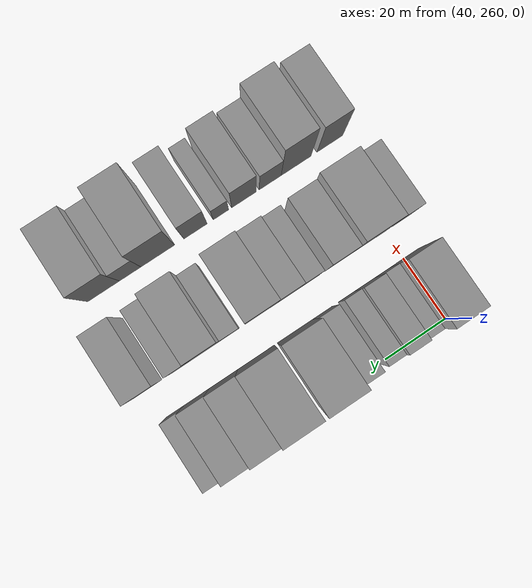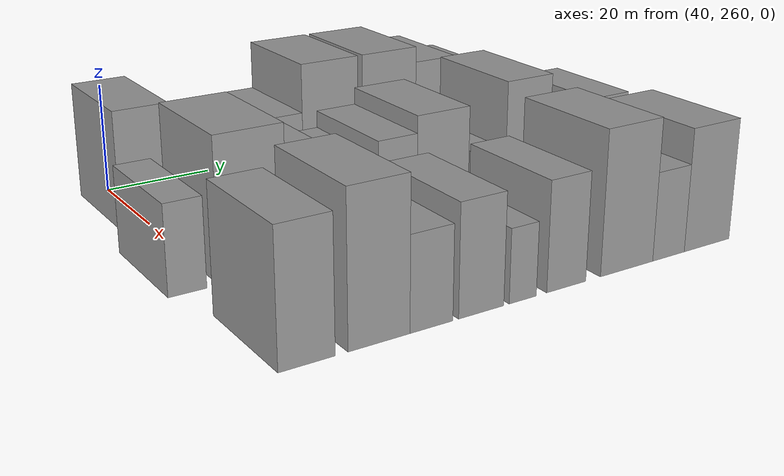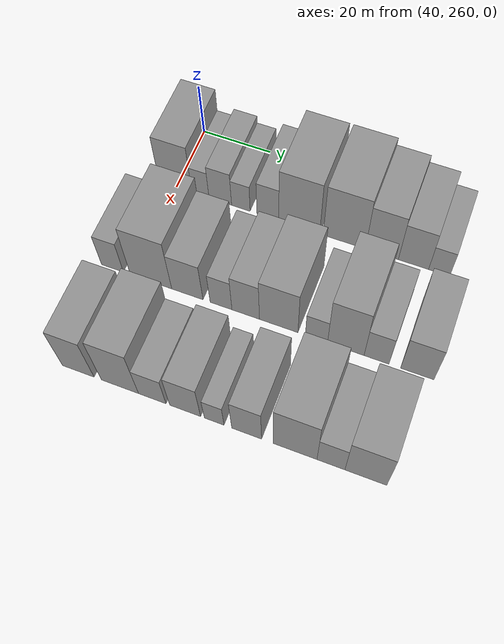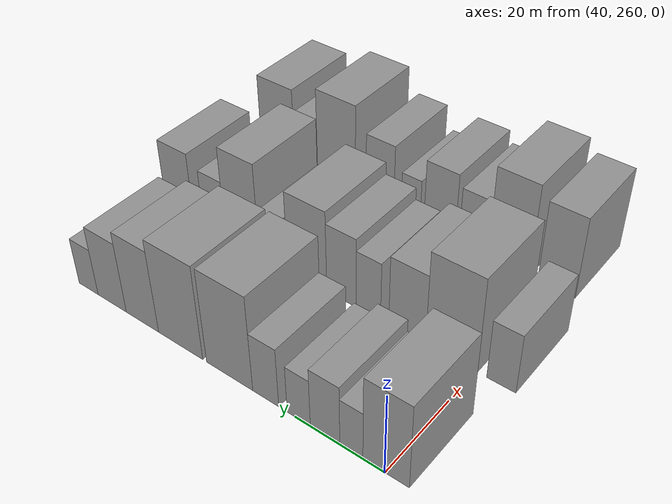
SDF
<sdf version="1.6">
 <world name="default">
  <model name="building_71">
   <static>1</static>
   <pose>50.0000 259.7965 0 0.000000 0.000000 0.000000</pose>
   <link name="link">
    <pose>0 0 10.50 0 0 0</pose>
    <collision name="collision"><geometry><box><size>20.0000 9.8497 21.0000</size></box></geometry></collision>
    <visual name="visual">
     <cast_shadows>0</cast_shadows>
     <geometry><box><size>20.0000 9.8497 21.0000</size></box></geometry>
     <material>
      <script>
       <uri>model://grey_wall/materials/scripts</uri>
       <uri>model://grey_wall/materials/textures</uri>
       <name>vrc/grey_wall</name>
      </script>
     </material>
    </visual>
   </link>
  </model>
  <model name="building_72">
   <static>1</static>
   <pose>50.0000 267.2616 0 0.000000 0.000000 0.000000</pose>
   <link name="link">
    <pose>0 0 6.00 0 0 0</pose>
    <collision name="collision"><geometry><box><size>20.0000 5.0805 12.0000</size></box></geometry></collision>
    <visual name="visual">
     <cast_shadows>0</cast_shadows>
     <geometry><box><size>20.0000 5.0805 12.0000</size></box></geometry>
     <material>
      <script>
       <uri>model://grey_wall/materials/scripts</uri>
       <uri>model://grey_wall/materials/textures</uri>
       <name>vrc/grey_wall</name>
      </script>
     </material>
    </visual>
   </link>
  </model>
  <model name="building_73">
   <static>1</static>
   <pose>50.0000 273.1415 0 0.000000 0.000000 0.000000</pose>
   <link name="link">
    <pose>0 0 7.50 0 0 0</pose>
    <collision name="collision"><geometry><box><size>20.0000 6.6795 15.0000</size></box></geometry></collision>
    <visual name="visual">
     <cast_shadows>0</cast_shadows>
     <geometry><box><size>20.0000 6.6795 15.0000</size></box></geometry>
     <material>
      <script>
       <uri>model://grey_wall/materials/scripts</uri>
       <uri>model://grey_wall/materials/textures</uri>
       <name>vrc/grey_wall</name>
      </script>
     </material>
    </visual>
   </link>
  </model>
  <model name="building_74">
   <static>1</static>
   <pose>50.0000 279.1831 0 0.000000 0.000000 0.000000</pose>
   <link name="link">
    <pose>0 0 6.00 0 0 0</pose>
    <collision name="collision"><geometry><box><size>20.0000 5.4036 12.0000</size></box></geometry></collision>
    <visual name="visual">
     <cast_shadows>0</cast_shadows>
     <geometry><box><size>20.0000 5.4036 12.0000</size></box></geometry>
     <material>
      <script>
       <uri>model://grey_wall/materials/scripts</uri>
       <uri>model://grey_wall/materials/textures</uri>
       <name>vrc/grey_wall</name>
      </script>
     </material>
    </visual>
   </link>
  </model>
  <model name="building_75">
   <static>1</static>
   <pose>50.0000 287.0433 0 0.000000 0.000000 0.000000</pose>
   <link name="link">
    <pose>0 0 7.50 0 0 0</pose>
    <collision name="collision"><geometry><box><size>20.0000 6.3169 15.0000</size></box></geometry></collision>
    <visual name="visual">
     <cast_shadows>0</cast_shadows>
     <geometry><box><size>20.0000 6.3169 15.0000</size></box></geometry>
     <material>
      <script>
       <uri>model://grey_wall/materials/scripts</uri>
       <uri>model://grey_wall/materials/textures</uri>
       <name>vrc/grey_wall</name>
      </script>
     </material>
    </visual>
   </link>
  </model>
  <model name="building_76">
   <static>1</static>
   <pose>50.0000 296.0653 0 0.000000 0.000000 0.000000</pose>
   <link name="link">
    <pose>0 0 12.00 0 0 0</pose>
    <collision name="collision"><geometry><box><size>20.0000 11.7271 24.0000</size></box></geometry></collision>
    <visual name="visual">
     <cast_shadows>0</cast_shadows>
     <geometry><box><size>20.0000 11.7271 24.0000</size></box></geometry>
     <material>
      <script>
       <uri>model://grey_wall/materials/scripts</uri>
       <uri>model://grey_wall/materials/textures</uri>
       <name>vrc/grey_wall</name>
      </script>
     </material>
    </visual>
   </link>
  </model>
  <model name="building_77">
   <static>1</static>
   <pose>50.0000 308.8688 0 0.000000 0.000000 0.000000</pose>
   <link name="link">
    <pose>0 0 12.00 0 0 0</pose>
    <collision name="collision"><geometry><box><size>20.0000 11.8798 24.0000</size></box></geometry></collision>
    <visual name="visual">
     <cast_shadows>0</cast_shadows>
     <geometry><box><size>20.0000 11.8798 24.0000</size></box></geometry>
     <material>
      <script>
       <uri>model://grey_wall/materials/scripts</uri>
       <uri>model://grey_wall/materials/textures</uri>
       <name>vrc/grey_wall</name>
      </script>
     </material>
    </visual>
   </link>
  </model>
  <model name="building_78">
   <static>1</static>
   <pose>50.0000 319.3805 0 0.000000 0.000000 0.000000</pose>
   <link name="link">
    <pose>0 0 10.50 0 0 0</pose>
    <collision name="collision"><geometry><box><size>20.0000 9.1436 21.0000</size></box></geometry></collision>
    <visual name="visual">
     <cast_shadows>0</cast_shadows>
     <geometry><box><size>20.0000 9.1436 21.0000</size></box></geometry>
     <material>
      <script>
       <uri>model://grey_wall/materials/scripts</uri>
       <uri>model://grey_wall/materials/textures</uri>
       <name>vrc/grey_wall</name>
      </script>
     </material>
    </visual>
   </link>
  </model>
  <model name="building_79">
   <static>1</static>
   <pose>50.0000 328.1039 0 0.000000 0.000000 0.000000</pose>
   <link name="link">
    <pose>0 0 9.00 0 0 0</pose>
    <collision name="collision"><geometry><box><size>20.0000 8.3032 18.0000</size></box></geometry></collision>
    <visual name="visual">
     <cast_shadows>0</cast_shadows>
     <geometry><box><size>20.0000 8.3032 18.0000</size></box></geometry>
     <material>
      <script>
       <uri>model://grey_wall/materials/scripts</uri>
       <uri>model://grey_wall/materials/textures</uri>
       <name>vrc/grey_wall</name>
      </script>
     </material>
    </visual>
   </link>
  </model>
  <model name="building_80">
   <static>1</static>
   <pose>50.0000 335.1193 0 0.000000 0.000000 0.000000</pose>
   <link name="link">
    <pose>0 0 6.00 0 0 0</pose>
    <collision name="collision"><geometry><box><size>20.0000 5.7276 12.0000</size></box></geometry></collision>
    <visual name="visual">
     <cast_shadows>0</cast_shadows>
     <geometry><box><size>20.0000 5.7276 12.0000</size></box></geometry>
     <material>
      <script>
       <uri>model://grey_wall/materials/scripts</uri>
       <uri>model://grey_wall/materials/textures</uri>
       <name>vrc/grey_wall</name>
      </script>
     </material>
    </visual>
   </link>
  </model>
  <model name="building_148">
   <static>1</static>
   <pose>79.0000 254.3958 0 0.000000 0.000000 0.000000</pose>
   <link name="link">
    <pose>0 0 7.50 0 0 0</pose>
    <collision name="collision"><geometry><box><size>20.0000 6.3210 15.0000</size></box></geometry></collision>
    <visual name="visual">
     <cast_shadows>0</cast_shadows>
     <geometry><box><size>20.0000 6.3210 15.0000</size></box></geometry>
     <material>
      <script>
       <uri>model://grey_wall/materials/scripts</uri>
       <uri>model://grey_wall/materials/textures</uri>
       <name>vrc/grey_wall</name>
      </script>
     </material>
    </visual>
   </link>
  </model>
  <model name="building_149">
   <static>1</static>
   <pose>79.0000 265.4739 0 0.000000 0.000000 0.000000</pose>
   <link name="link">
    <pose>0 0 12.00 0 0 0</pose>
    <collision name="collision"><geometry><box><size>20.0000 11.8352 24.0000</size></box></geometry></collision>
    <visual name="visual">
     <cast_shadows>0</cast_shadows>
     <geometry><box><size>20.0000 11.8352 24.0000</size></box></geometry>
     <material>
      <script>
       <uri>model://grey_wall/materials/scripts</uri>
       <uri>model://grey_wall/materials/textures</uri>
       <name>vrc/grey_wall</name>
      </script>
     </material>
    </visual>
   </link>
  </model>
  <model name="building_150">
   <static>1</static>
   <pose>79.0000 275.7903 0 0.000000 0.000000 0.000000</pose>
   <link name="link">
    <pose>0 0 9.00 0 0 0</pose>
    <collision name="collision"><geometry><box><size>20.0000 8.7977 18.0000</size></box></geometry></collision>
    <visual name="visual">
     <cast_shadows>0</cast_shadows>
     <geometry><box><size>20.0000 8.7977 18.0000</size></box></geometry>
     <material>
      <script>
       <uri>model://grey_wall/materials/scripts</uri>
       <uri>model://grey_wall/materials/textures</uri>
       <name>vrc/grey_wall</name>
      </script>
     </material>
    </visual>
   </link>
  </model>
  <model name="building_151">
   <static>1</static>
   <pose>79.0000 285.2104 0 0.000000 0.000000 0.000000</pose>
   <link name="link">
    <pose>0 0 7.50 0 0 0</pose>
    <collision name="collision"><geometry><box><size>20.0000 6.0424 15.0000</size></box></geometry></collision>
    <visual name="visual">
     <cast_shadows>0</cast_shadows>
     <geometry><box><size>20.0000 6.0424 15.0000</size></box></geometry>
     <material>
      <script>
       <uri>model://grey_wall/materials/scripts</uri>
       <uri>model://grey_wall/materials/textures</uri>
       <name>vrc/grey_wall</name>
      </script>
     </material>
    </visual>
   </link>
  </model>
  <model name="building_152">
   <static>1</static>
   <pose>79.0000 292.0234 0 0.000000 0.000000 0.000000</pose>
   <link name="link">
    <pose>0 0 9.00 0 0 0</pose>
    <collision name="collision"><geometry><box><size>20.0000 7.5835 18.0000</size></box></geometry></collision>
    <visual name="visual">
     <cast_shadows>0</cast_shadows>
     <geometry><box><size>20.0000 7.5835 18.0000</size></box></geometry>
     <material>
      <script>
       <uri>model://grey_wall/materials/scripts</uri>
       <uri>model://grey_wall/materials/textures</uri>
       <name>vrc/grey_wall</name>
      </script>
     </material>
    </visual>
   </link>
  </model>
  <model name="building_153">
   <static>1</static>
   <pose>79.0000 301.0361 0 0.000000 0.000000 0.000000</pose>
   <link name="link">
    <pose>0 0 10.50 0 0 0</pose>
    <collision name="collision"><geometry><box><size>20.0000 10.4419 21.0000</size></box></geometry></collision>
    <visual name="visual">
     <cast_shadows>0</cast_shadows>
     <geometry><box><size>20.0000 10.4419 21.0000</size></box></geometry>
     <material>
      <script>
       <uri>model://grey_wall/materials/scripts</uri>
       <uri>model://grey_wall/materials/textures</uri>
       <name>vrc/grey_wall</name>
      </script>
     </material>
    </visual>
   </link>
  </model>
  <model name="building_154">
   <static>1</static>
   <pose>79.0000 311.2162 0 0.000000 0.000000 0.000000</pose>
   <link name="link">
    <pose>0 0 6.00 0 0 0</pose>
    <collision name="collision"><geometry><box><size>20.0000 5.9182 12.0000</size></box></geometry></collision>
    <visual name="visual">
     <cast_shadows>0</cast_shadows>
     <geometry><box><size>20.0000 5.9182 12.0000</size></box></geometry>
     <material>
      <script>
       <uri>model://grey_wall/materials/scripts</uri>
       <uri>model://grey_wall/materials/textures</uri>
       <name>vrc/grey_wall</name>
      </script>
     </material>
    </visual>
   </link>
  </model>
  <model name="building_155">
   <static>1</static>
   <pose>79.0000 319.0202 0 0.000000 0.000000 0.000000</pose>
   <link name="link">
    <pose>0 0 12.00 0 0 0</pose>
    <collision name="collision"><geometry><box><size>20.0000 9.6899 24.0000</size></box></geometry></collision>
    <visual name="visual">
     <cast_shadows>0</cast_shadows>
     <geometry><box><size>20.0000 9.6899 24.0000</size></box></geometry>
     <material>
      <script>
       <uri>model://grey_wall/materials/scripts</uri>
       <uri>model://grey_wall/materials/textures</uri>
       <name>vrc/grey_wall</name>
      </script>
     </material>
    </visual>
   </link>
  </model>
  <model name="building_156">
   <static>1</static>
   <pose>79.0000 327.1282 0 0.000000 0.000000 0.000000</pose>
   <link name="link">
    <pose>0 0 7.50 0 0 0</pose>
    <collision name="collision"><geometry><box><size>20.0000 6.5262 15.0000</size></box></geometry></collision>
    <visual name="visual">
     <cast_shadows>0</cast_shadows>
     <geometry><box><size>20.0000 6.5262 15.0000</size></box></geometry>
     <material>
      <script>
       <uri>model://grey_wall/materials/scripts</uri>
       <uri>model://grey_wall/materials/textures</uri>
       <name>vrc/grey_wall</name>
      </script>
     </material>
    </visual>
   </link>
  </model>
  <model name="building_157">
   <static>1</static>
   <pose>79.0000 337.6973 0 0.000000 0.000000 0.000000</pose>
   <link name="link">
    <pose>0 0 9.00 0 0 0</pose>
    <collision name="collision"><geometry><box><size>20.0000 8.6119 18.0000</size></box></geometry></collision>
    <visual name="visual">
     <cast_shadows>0</cast_shadows>
     <geometry><box><size>20.0000 8.6119 18.0000</size></box></geometry>
     <material>
      <script>
       <uri>model://grey_wall/materials/scripts</uri>
       <uri>model://grey_wall/materials/textures</uri>
       <name>vrc/grey_wall</name>
      </script>
     </material>
    </visual>
   </link>
  </model>
  <model name="building_219">
   <static>1</static>
   <pose>108.0000 258.8161 0 0.000000 0.000000 0.000000</pose>
   <link name="link">
    <pose>0 0 10.50 0 0 0</pose>
    <collision name="collision"><geometry><box><size>20.0000 8.7097 21.0000</size></box></geometry></collision>
    <visual name="visual">
     <cast_shadows>0</cast_shadows>
     <geometry><box><size>20.0000 8.7097 21.0000</size></box></geometry>
     <material>
      <script>
       <uri>model://grey_wall/materials/scripts</uri>
       <uri>model://grey_wall/materials/textures</uri>
       <name>vrc/grey_wall</name>
      </script>
     </material>
    </visual>
   </link>
  </model>
  <model name="building_220">
   <static>1</static>
   <pose>108.0000 270.2112 0 0.000000 0.000000 0.000000</pose>
   <link name="link">
    <pose>0 0 12.00 0 0 0</pose>
    <collision name="collision"><geometry><box><size>20.0000 10.0805 24.0000</size></box></geometry></collision>
    <visual name="visual">
     <cast_shadows>0</cast_shadows>
     <geometry><box><size>20.0000 10.0805 24.0000</size></box></geometry>
     <material>
      <script>
       <uri>model://grey_wall/materials/scripts</uri>
       <uri>model://grey_wall/materials/textures</uri>
       <name>vrc/grey_wall</name>
      </script>
     </material>
    </visual>
   </link>
  </model>
  <model name="building_221">
   <static>1</static>
   <pose>108.0000 278.9205 0 0.000000 0.000000 0.000000</pose>
   <link name="link">
    <pose>0 0 7.50 0 0 0</pose>
    <collision name="collision"><geometry><box><size>20.0000 7.3381 15.0000</size></box></geometry></collision>
    <visual name="visual">
     <cast_shadows>0</cast_shadows>
     <geometry><box><size>20.0000 7.3381 15.0000</size></box></geometry>
     <material>
      <script>
       <uri>model://grey_wall/materials/scripts</uri>
       <uri>model://grey_wall/materials/textures</uri>
       <name>vrc/grey_wall</name>
      </script>
     </material>
    </visual>
   </link>
  </model>
  <model name="building_222">
   <static>1</static>
   <pose>108.0000 287.6646 0 0.000000 0.000000 0.000000</pose>
   <link name="link">
    <pose>0 0 9.00 0 0 0</pose>
    <collision name="collision"><geometry><box><size>20.0000 8.1502 18.0000</size></box></geometry></collision>
    <visual name="visual">
     <cast_shadows>0</cast_shadows>
     <geometry><box><size>20.0000 8.1502 18.0000</size></box></geometry>
     <material>
      <script>
       <uri>model://grey_wall/materials/scripts</uri>
       <uri>model://grey_wall/materials/textures</uri>
       <name>vrc/grey_wall</name>
      </script>
     </material>
    </visual>
   </link>
  </model>
  <model name="building_223">
   <static>1</static>
   <pose>108.0000 295.2943 0 0.000000 0.000000 0.000000</pose>
   <link name="link">
    <pose>0 0 6.00 0 0 0</pose>
    <collision name="collision"><geometry><box><size>20.0000 5.1093 12.0000</size></box></geometry></collision>
    <visual name="visual">
     <cast_shadows>0</cast_shadows>
     <geometry><box><size>20.0000 5.1093 12.0000</size></box></geometry>
     <material>
      <script>
       <uri>model://grey_wall/materials/scripts</uri>
       <uri>model://grey_wall/materials/textures</uri>
       <name>vrc/grey_wall</name>
      </script>
     </material>
    </visual>
   </link>
  </model>
  <model name="building_224">
   <static>1</static>
   <pose>108.0000 303.7005 0 0.000000 0.000000 0.000000</pose>
   <link name="link">
    <pose>0 0 9.00 0 0 0</pose>
    <collision name="collision"><geometry><box><size>20.0000 7.7030 18.0000</size></box></geometry></collision>
    <visual name="visual">
     <cast_shadows>0</cast_shadows>
     <geometry><box><size>20.0000 7.7030 18.0000</size></box></geometry>
     <material>
      <script>
       <uri>model://grey_wall/materials/scripts</uri>
       <uri>model://grey_wall/materials/textures</uri>
       <name>vrc/grey_wall</name>
      </script>
     </material>
    </visual>
   </link>
  </model>
  <model name="building_225">
   <static>1</static>
   <pose>108.0000 316.0656 0 0.000000 0.000000 0.000000</pose>
   <link name="link">
    <pose>0 0 12.00 0 0 0</pose>
    <collision name="collision"><geometry><box><size>20.0000 11.0271 24.0000</size></box></geometry></collision>
    <visual name="visual">
     <cast_shadows>0</cast_shadows>
     <geometry><box><size>20.0000 11.0271 24.0000</size></box></geometry>
     <material>
      <script>
       <uri>model://grey_wall/materials/scripts</uri>
       <uri>model://grey_wall/materials/textures</uri>
       <name>vrc/grey_wall</name>
      </script>
     </material>
    </visual>
   </link>
  </model>
  <model name="building_226">
   <static>1</static>
   <pose>108.0000 325.0733 0 0.000000 0.000000 0.000000</pose>
   <link name="link">
    <pose>0 0 7.50 0 0 0</pose>
    <collision name="collision"><geometry><box><size>20.0000 6.9884 15.0000</size></box></geometry></collision>
    <visual name="visual">
     <cast_shadows>0</cast_shadows>
     <geometry><box><size>20.0000 6.9884 15.0000</size></box></geometry>
     <material>
      <script>
       <uri>model://grey_wall/materials/scripts</uri>
       <uri>model://grey_wall/materials/textures</uri>
       <name>vrc/grey_wall</name>
      </script>
     </material>
    </visual>
   </link>
  </model>
  <model name="building_227">
   <static>1</static>
   <pose>108.0000 333.7259 0 0.000000 0.000000 0.000000</pose>
   <link name="link">
    <pose>0 0 10.50 0 0 0</pose>
    <collision name="collision"><geometry><box><size>20.0000 10.3166 21.0000</size></box></geometry></collision>
    <visual name="visual">
     <cast_shadows>0</cast_shadows>
     <geometry><box><size>20.0000 10.3166 21.0000</size></box></geometry>
     <material>
      <script>
       <uri>model://grey_wall/materials/scripts</uri>
       <uri>model://grey_wall/materials/textures</uri>
       <name>vrc/grey_wall</name>
      </script>
     </material>
    </visual>
   </link>
  </model>
 </world>
</sdf>
